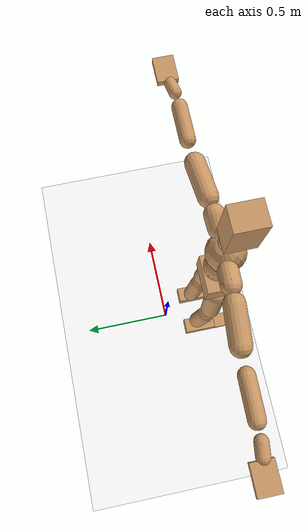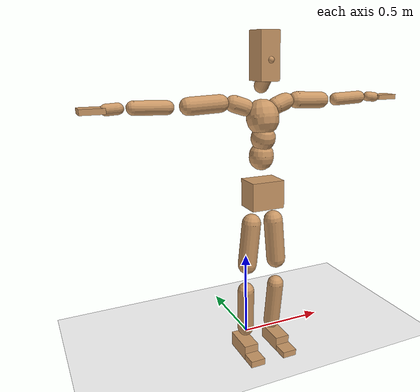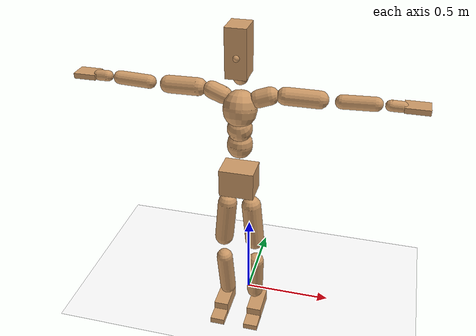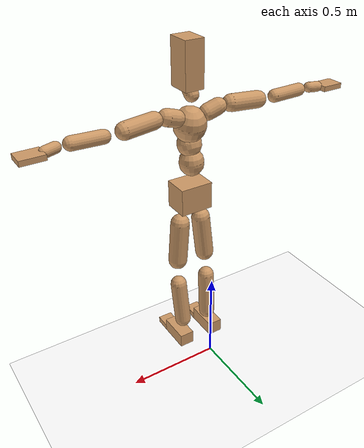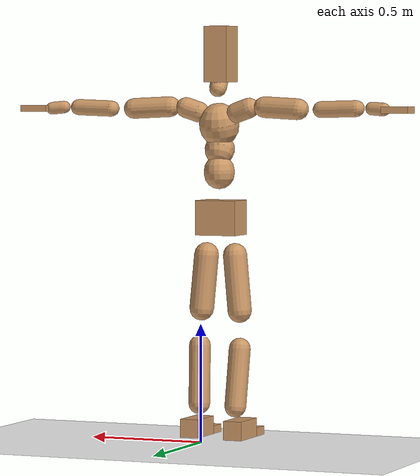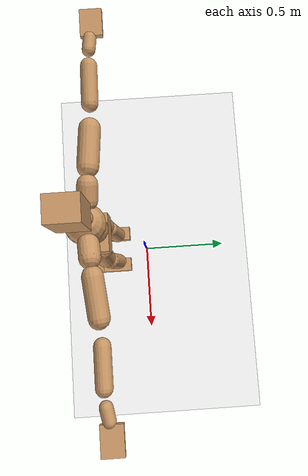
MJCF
<mujoco model="humanoid">
  <option integrator="implicitfast" />

  <visual>
    <global offwidth="1280" offheight="960" />
    <headlight active="1" ambient="0.34 0.34 0.34" diffuse="0.5 0.5 0.5" />
  </visual>

  <default>
    <joint damping="2" stiffness="2" armature="0.01" limited="true" solimplimit="0 .99 .01" />
    <geom condim="1" friction="0.7 0.005 0.0001" solimp=".99 .99 .003" solref="0.015 1" margin="0.001" rgba="0.8 0.6 .4 1" />
    <default class="smplcontact">
      <geom condim="3" friction="1. 0.005 0.0001" solref="0.015 1" solimp="0.98 0.98 0.001" priority="1" />
    </default>
    <default class="stiff_medium">
      <joint stiffness="10" />
    </default>
    <default class="stiff_medium_higher">
      <joint stiffness="50" />
    </default>
    <default class="stiff_high">
      <joint stiffness="100" />
    </default>
  </default>

  <asset>
    <texture type="skybox" builtin="gradient" rgb1="0.99 0.99 0.99" rgb2="0.608 0.828 0.892" width="100" />
    <texture builtin="flat" height="1278" mark="cross" markrgb="1 1 1" name="texgeom" random="0.01" rgb1="0.8 0.6 0.4" rgb2="0.8 0.6 0.4" type="cube" width="127" />
    <texture name="texplane" type="2d" builtin="checker" markrgb="1 1 1" rgb1="0.756 0.772 0.76" rgb2="0.6 0.6 0.6" width="100" height="100" />
    <material name="MatPlane" reflectance="0.5" texture="texplane" texrepeat="1 1" texuniform="true" />
    <material name="geom" texture="texgeom" texuniform="true" />
  </asset>

  <worldbody>
    <light name="tracking_light" pos="0 0 7" dir="0 0 -1" directional="true" cutoff="100" exponent="1" diffuse="1 1 1" specular="0.1 0.1 0.1" mode="trackcom" />
    <camera name="back" pos="0 3 2.4" xyaxes="-1 0 0 0 -1 2" mode="trackcom" />
    <camera name="side" pos="-3 0 2.4" xyaxes="0 -1 0 1 0 2" mode="trackcom" />
    <camera name="front_side" pos="-2.8 -2.8 0.8" xyaxes="0.5 -0.5 0 0.1 0.1 1" mode="trackcom" />
    <geom condim="3" name="floor" pos="0 0 0" rgba="1 1 1 1" size="100 100 .2" type="plane" material="MatPlane" />
    <body name="Pelvis" pos="-0.0018 -0.2233 0.955627" euler="90 0 0">
      <site name="Pelvis" size="0.01" />
      <freejoint name="Pelvis" />
      <geom type="box" pos="0 -0.0124985 -0.004675" size="0.090865 0.0745778 0.07055" quat="1.0000 0.0000 0.0000 0.0000" density="3165.830099" name="Pelvis" />
      <body name="L_Hip" pos="0.059075 -0.0944102 -0.00578">
        <joint name="L_Hip_x" type="hinge" pos="0 0 0" axis="1 0 0" stiffness="10" range="-160.0 22.92" class="stiff_medium" damping="15" />
        <joint name="L_Hip_y" type="hinge" pos="0 0 0" axis="0 1 0" stiffness="10" range="-70.0 70.0" class="stiff_medium" damping="10" />
        <joint name="L_Hip_z" type="hinge" pos="0 0 0" axis="0 0 1" stiffness="10" range="-28.65 90.0" class="stiff_medium" damping="10" />
        <geom type="capsule" density="2040.816327" fromto="0.00711405 -0.0774712 -0.000929509 0.0282892 -0.310088 -0.00371843" size="0.052275" name="L_Hip" />
        <body name="L_Knee" pos="0.0354032 -0.387559 -0.00464794">
          <joint name="L_Knee_x" type="hinge" pos="0 0 0" axis="1 0 0" range="-5.16 171.89" damping="8" />
          <joint name="L_Knee_y" type="hinge" pos="0 0 0" axis="0 1 0" range="-4.58 6.88" damping="8" />
          <joint name="L_Knee_z" type="hinge" pos="0 0 0" axis="0 0 1" range="-6.88 4.58" damping="8" />
          <geom type="capsule" density="1234.567901" fromto="-0.00279497 -0.08222 -0.00899855 -0.011265 -0.328885 -0.0361647" size="0.045985" name="L_Knee" />
          <body name="L_Ankle" pos="-0.01406 -0.411105 -0.0451633">
            <joint name="L_Ankle_x" type="hinge" pos="0 0 0" axis="1 0 0" range="-45.84 45.84" class="stiff_medium" damping="6" />
            <joint name="L_Ankle_y" type="hinge" pos="0 0 0" axis="0 1 0" range="-74.48 22.92" class="stiff_medium" damping="3" />
            <joint name="L_Ankle_z" type="hinge" pos="0 0 0" axis="0 0 1" range="-4.58 4.58" class="stiff_medium" damping="6" />
            <geom type="box" pos="0.019805 -0.020315 0.0251225" size="0.041055 0.03944 0.0882401" quat="1.0000 0.0000 0.0000 0.0000" density="449.071558" name="L_Ankle" class="smplcontact" />
            <body name="L_Toe" pos="0.02244 -0.04743 0.123848">
              <joint name="L_Toe_x" type="hinge" pos="0 0 0" axis="1 0 0" range="-91.67 22.92" />
              <joint name="L_Toe_y" type="hinge" pos="0 0 0" axis="0 1 0" range="-4.58 4.58" />
              <joint name="L_Toe_z" type="hinge" pos="0 0 0" axis="0 0 1" range="-4.58 4.58" />
              <geom type="box" pos="-0.00255 0.004675 0.0257453" size="0.04063 0.017 0.0514907" quat="1.0000 0.0000 0.0000 0.0000" density="423.206892" name="L_Toe" class="smplcontact" />
            </body>
          </body>
        </body>
      </body>
      <body name="R_Hip" pos="-0.057545 -0.0934805 -0.003655">
        <joint name="R_Hip_x" type="hinge" pos="0 0 0" axis="1 0 0" stiffness="10" range="-160.0 22.92" class="stiff_medium" damping="15" />
        <joint name="R_Hip_y" type="hinge" pos="0 0 0" axis="0 1 0" stiffness="10" range="-70.0 70.0" class="stiff_medium" damping="10" />
        <joint name="R_Hip_z" type="hinge" pos="0 0 0" axis="0 0 1" stiffness="10" range="-90.0 28.65" class="stiff_medium" damping="10" />
        <geom type="capsule" density="2040.816327" fromto="-0.00794093 -0.0790208 -0.00185307 -0.0315951 -0.316182 -0.00732762" size="0.05151" name="R_Hip" />
        <body name="R_Knee" pos="-0.039536 -0.395203 -0.0091807">
          <joint name="R_Knee_x" type="hinge" pos="0 0 0" axis="1 0 0" range="-5.16 171.89" damping="8" />
          <joint name="R_Knee_y" type="hinge" pos="0 0 0" axis="0 1 0" range="-6.88 4.58" damping="8" />
          <joint name="R_Knee_z" type="hinge" pos="0 0 0" axis="0 0 1" range="-4.58 6.88" damping="8" />
          <geom type="capsule" density="1234.567901" fromto="0.0032935 -0.0823265 -0.00876856 0.0130031 -0.329198 -0.0349018" size="0.045985" name="R_Knee" />
          <body name="R_Ankle" pos="0.0162966 -0.411524 -0.0436704">
            <joint name="R_Ankle_x" type="hinge" pos="0 0 0" axis="1 0 0" range="-45.84 45.84" class="stiff_medium" damping="6" />
            <joint name="R_Ankle_y" type="hinge" pos="0 0 0" axis="0 1 0" range="-22.92 74.48" class="stiff_medium" damping="3" />
            <joint name="R_Ankle_z" type="hinge" pos="0 0 0" axis="0 0 1" range="-4.58 4.58" class="stiff_medium" damping="6" />
            <geom type="box" pos="-0.01802 -0.01479 0.0265758" size="0.041055 0.04063 0.0897972" quat="1.0000 0.0000 0.0000 0.0000" density="434.700981" name="R_Ankle" class="smplcontact" />
            <body name="R_Toe" pos="-0.02159 -0.040885 0.128">
              <joint name="R_Toe_x" type="hinge" pos="0 0 0" axis="1 0 0" range="-91.67 22.92" />
              <joint name="R_Toe_y" type="hinge" pos="0 0 0" axis="0 1 0" range="-4.58 4.58" />
              <joint name="R_Toe_z" type="hinge" pos="0 0 0" axis="0 0 1" range="-4.58 4.58" />
              <geom type="box" pos="0.00357 0.003825 0.0235653" size="0.040715 0.01836 0.0511792" quat="1.0000 0.0000 0.0000 0.0000" density="407.384095" name="R_Toe" class="smplcontact" />
            </body>
          </body>
        </body>
      </body>
      <body name="Torso" pos="-0.002125 0.11259 -0.022695">
        <joint name="Torso_x" type="hinge" pos="0 0 0" axis="1 0 0" range="-25.78 57.3" class="stiff_medium" damping="15" />
        <joint name="Torso_y" type="hinge" pos="0 0 0" axis="0 1 0" range="-57.3 57.3" class="stiff_high" damping="20" />
        <joint name="Torso_z" type="hinge" pos="0 0 0" axis="0 0 1" range="-34.38 34.38" class="stiff_high" damping="20" />
        <geom type="capsule" density="2040.816327" fromto="0.002537 0.0628041 0.000507401 0.00305347 0.0767487 0.000610694" size="0.065365" name="Torso" />
        <body name="Spine" pos="0.00559115 0.139656 0.00111823">
          <joint name="Spine_x" type="hinge" pos="0 0 0" axis="1 0 0" stiffness="10" range="-25.78 57.3" class="stiff_medium" damping="15" />
          <joint name="Spine_y" type="hinge" pos="0 0 0" axis="0 1 0" stiffness="10" range="-57.3 57.3" class="stiff_high" damping="8" />
          <joint name="Spine_z" type="hinge" pos="0 0 0" axis="0 0 1" stiffness="20" range="-34.38 34.38" class="stiff_high" damping="12" />
          <geom type="capsule" density="2040.816327" fromto="0.000676785 0.0245646 0.0118164 0.000780078 0.0300392 0.014502" size="0.064175" name="Spine" />
          <body name="Chest" pos="0.00145686 0.0546038 0.0263184">
            <joint name="Chest_x" type="hinge" pos="0 0 0" axis="1 0 0" stiffness="10" range="-25.78 57.3" class="stiff_medium" damping="15" />
            <joint name="Chest_y" type="hinge" pos="0 0 0" axis="0 1 0" stiffness="10" range="-57.3 57.3" class="stiff_high" damping="8" />
            <joint name="Chest_z" type="hinge" pos="0 0 0" axis="0 0 1" stiffness="20" range="-34.38 34.38" class="stiff_high" damping="12" />
            <geom type="capsule" density="2040.816327" fromto="-0.000847534 0.0704327 -0.0179238 -0.000950828 0.08603 -0.0219523" size="0.08517" name="Chest" />
            <body name="Neck" pos="-0.00263553 0.220399 -0.0464305">
              <joint name="Neck_x" type="hinge" pos="0 0 0" axis="1 0 0" range="-28.65 57.3" class="stiff_medium_higher" damping="10" />
              <joint name="Neck_y" type="hinge" pos="0 0 0" axis="0 1 0" range="-40.11 40.11" class="stiff_medium_higher" damping="10" />
              <joint name="Neck_z" type="hinge" pos="0 0 0" axis="0 0 1" range="-40.11 40.11" class="stiff_medium_higher" damping="10" />
              <geom type="capsule" density="1000" fromto="0.00104446 0.0134982 0.0106886 0.00426263 0.0539848 0.0426626" size="0.0372431" name="Neck" />
              <body name="Head" pos="0.00539187 0.067475 0.0532595">
                <joint name="Head_x" type="hinge" pos="0 0 0" axis="1 0 0" range="-28.65 57.3" class="stiff_medium_higher" damping="2" />
                <joint name="Head_y" type="hinge" pos="0 0 0" axis="0 1 0" range="-40.11 40.11" class="stiff_medium_higher" damping="2" />
                <joint name="Head_z" type="hinge" pos="0 0 0" axis="0 0 1" range="-40.11 40.11" class="stiff_medium_higher" damping="2" />
                <geom type="box" pos="-0.00358764 0.0909392 -0.00990872" size="0.0517645 0.119799 0.0649192" quat="1.0000 0.0000 0.0000 0.0000" density="1018.069894" name="Head" />
                <geom type="capsule" name="nose" size="0.017084 0.008542" pos="0 0.0726683 0.04271" quat="1 0 0 0" mass="0" contype="0" conaffinity="0" />
              </body>
            </body>
            <body name="L_Thorax" pos="0.0668324 0.125736 -0.0347422">
              <joint name="L_Thorax_x" type="hinge" pos="0 0 0" axis="1 0 0" range="-10.89 4.58" class="stiff_medium_higher" damping="20" />
              <joint name="L_Thorax_y" type="hinge" pos="0 0 0" axis="0 1 0" range="-28.65 17.19" class="stiff_medium_higher" damping="20" />
              <joint name="L_Thorax_z" type="hinge" pos="0 0 0" axis="0 0 1" range="-31.51 40.11" class="stiff_medium_higher" damping="20" />
              <geom type="capsule" density="1000" fromto="0.0187999 0.00630107 -0.00185323 0.0751981 0.0252038 -0.00732778" size="0.044285" name="L_Thorax" />
              <body name="L_Shoulder" pos="0.093998 0.0315048 -0.00918102">
                <joint name="L_Shoulder_x" type="hinge" pos="0 0 0" axis="1 0 0" range="-97.4 97.4" class="stiff_medium" damping="6" />
                <joint name="L_Shoulder_y" type="hinge" pos="0 0 0" axis="0 1 0" range="-108.86 80.21" class="stiff_medium" damping="6" />
                <joint name="L_Shoulder_z" type="hinge" pos="0 0 0" axis="0 0 1" range="-97.4 85.94" class="stiff_medium" damping="6" />
                <geom type="capsule" density="1000" fromto="0.0536099 -0.00267317 -0.00568056 0.214541 -0.0105235 -0.022724" size="0.043945" name="L_Shoulder" />
                <body name="L_Elbow" pos="0.268151 -0.0131966 -0.0284045">
                  <joint name="L_Elbow_x" type="hinge" pos="0 0 0" axis="1 0 0" range="-17.19 4.58" damping="5" />
                  <joint name="L_Elbow_y" type="hinge" pos="0 0 0" axis="0 1 0" range="-180.0 17.19" damping="5" />
                  <joint name="L_Elbow_z" type="hinge" pos="0 0 0" axis="0 0 1" range="-100.84 4.58" damping="5" />
                  <geom type="capsule" density="1000" fromto="0.0514401 0.00185884 -0.000212627 0.205967 0.00743668 -0.000935681" size="0.034425" name="L_Elbow" />
                  <body name="L_Wrist" pos="0.257407 0.00929553 -0.00123331">
                    <joint name="L_Wrist_x" type="hinge" pos="0 0 0" axis="1 0 0" range="-180.0 22.92" />
                    <joint name="L_Wrist_y" type="hinge" pos="0 0 0" axis="0 1 0" range="-17.19 17.19" />
                    <joint name="L_Wrist_z" type="hinge" pos="0 0 0" axis="0 0 1" range="-22.92 22.92" />
                    <geom type="capsule" density="1000" fromto="0.0173527 -0.00165874 -0.0030987 0.0694126 -0.00672011 -0.0123951" size="0.02703" name="L_Wrist" class="smplcontact" />
                    <body name="L_Hand" pos="0.0867639 -0.00846371 -0.0154085">
                      <joint name="L_Hand_x" type="hinge" pos="0 0 0" axis="1 0 0" range="-17.19 17.19" />
                      <joint name="L_Hand_y" type="hinge" pos="0 0 0" axis="0 1 0" range="-51.57 51.57" />
                      <joint name="L_Hand_z" type="hinge" pos="0 0 0" axis="0 0 1" range="-91.67 91.67" />
                      <geom type="box" pos="0.0509236 0.00085 -0.00493" size="0.0604266 0.01343 0.04573" quat="1.0000 0.0000 0.0000 0.0000" density="400.552564" name="L_Hand" class="smplcontact" />
                    </body>
                  </body>
                </body>
              </body>
            </body>
            <body name="R_Thorax" pos="-0.0696769 0.123155 -0.0385374">
              <joint name="R_Thorax_x" type="hinge" pos="0 0 0" axis="1 0 0" range="-10.89 4.58" class="stiff_medium_higher" damping="20" />
              <joint name="R_Thorax_y" type="hinge" pos="0 0 0" axis="0 1 0" range="-17.19 28.65" class="stiff_medium_higher" damping="20" />
              <joint name="R_Thorax_z" type="hinge" pos="0 0 0" axis="0 0 1" range="-40.11 31.51" class="stiff_medium_higher" damping="20" />
              <geom type="capsule" density="1000" fromto="-0.0198318 0.00671389 -0.00186533 -0.0793288 0.0268561 -0.00754647" size="0.043435" name="R_Thorax" />
              <body name="R_Shoulder" pos="-0.0991661 0.0336569 -0.00941232">
                <joint name="R_Shoulder_x" type="hinge" pos="0 0 0" axis="1 0 0" range="-97.4 97.4" class="stiff_medium" damping="6" />
                <joint name="R_Shoulder_y" type="hinge" pos="0 0 0" axis="0 1 0" range="-80.21 108.86" class="stiff_medium" damping="6" />
                <joint name="R_Shoulder_z" type="hinge" pos="0 0 0" axis="0 0 1" range="-85.94 97.4" class="stiff_medium" damping="6" />
                <geom type="capsule" density="1000" fromto="-0.0523707 -0.00278223 -0.00443457 -0.209687 -0.0110457 -0.0176561" size="0.045135" name="R_Shoulder" />
                <body name="R_Elbow" pos="-0.262056 -0.0137429 -0.0220906">
                  <joint name="R_Elbow_x" type="hinge" pos="0 0 0" axis="1 0 0" range="-17.19 4.58" damping="5" />
                  <joint name="R_Elbow_y" type="hinge" pos="0 0 0" axis="0 1 0" range="-17.19 180.0" damping="5" />
                  <joint name="R_Elbow_z" type="hinge" pos="0 0 0" axis="0 0 1" range="-4.58 100.84" damping="5" />
                  <geom type="capsule" density="1000" fromto="-0.0527833 0.00164088 -0.0011365 -0.210925 0.00639237 -0.00454518" size="0.03468" name="R_Elbow" />
                  <body name="R_Wrist" pos="-0.263709 0.00803326 -0.00576669">
                    <joint name="R_Wrist_x" type="hinge" pos="0 0 0" axis="1 0 0" range="-180.0 22.92" />
                    <joint name="R_Wrist_y" type="hinge" pos="0 0 0" axis="0 1 0" range="-17.19 17.19" />
                    <joint name="R_Wrist_z" type="hinge" pos="0 0 0" axis="0 0 1" range="-22.92 22.92" />
                    <geom type="capsule" density="1000" fromto="-0.017457 -0.0012452 -0.00216237 -0.06993 -0.00506706 -0.00856656" size="0.02771" name="R_Wrist" class="smplcontact" />
                    <body name="R_Hand" pos="-0.0873848 -0.0063121 -0.0106437">
                      <joint name="R_Hand_x" type="hinge" pos="0 0 0" axis="1 0 0" range="-17.19 17.19" />
                      <joint name="R_Hand_y" type="hinge" pos="0 0 0" axis="0 1 0" range="-51.57 51.57" />
                      <joint name="R_Hand_z" type="hinge" pos="0 0 0" axis="0 0 1" range="-91.67 91.67" />
                      <geom type="box" pos="-0.0477215 -0.000765 -0.006715" size="0.0587739 0.01394 0.04641" quat="1.0000 0.0000 0.0000 0.0000" density="403.679611" name="R_Hand" class="smplcontact" />
                    </body>
                  </body>
                </body>
              </body>
            </body>
          </body>
        </body>
      </body>
    </body>
  </worldbody>
  <actuator>
    <general name="L_Hip_x" joint="L_Hip_x" biastype="affine" gainprm="287.33006409732246" biasprm="-215.3247604770444 -180 -2.0" ctrllimited="true" ctrlrange="-1 1" forcerange="-360 360" />
    <general name="L_Hip_y" joint="L_Hip_y" biastype="affine" gainprm="219.9114857512855" biasprm="0.0 -180 -2.0" ctrllimited="true" ctrlrange="-1 1" forcerange="-360 360" />
    <general name="L_Hip_z" joint="L_Hip_z" biastype="affine" gainprm="186.3749841742145" biasprm="96.3683546488669 -180 -2.0" ctrllimited="true" ctrlrange="-1 1" forcerange="-360 360" />
    <general name="L_Knee_x" joint="L_Knee_x" biastype="affine" gainprm="278.10948965903646" biasprm="261.8988715665131 -180 -2.0" ctrllimited="true" ctrlrange="-1 1" forcerange="-360 360" />
    <general name="L_Knee_y" joint="L_Knee_y" biastype="affine" gainprm="18.001325905069514" biasprm="3.612831551628262 -180 -2.0" ctrllimited="true" ctrlrange="-1 1" forcerange="-360 360" />
    <general name="L_Knee_z" joint="L_Knee_z" biastype="affine" gainprm="18.001325905069514" biasprm="-3.612831551628262 -180 -2.0" ctrllimited="true" ctrlrange="-1 1" forcerange="-360 360" />
    <general name="L_Ankle_x" joint="L_Ankle_x" biastype="affine" gainprm="72.00530362027807" biasprm="0.0 -90 -2.0" ctrllimited="true" ctrlrange="-1 1" forcerange="-180 180" />
    <general name="L_Ankle_y" joint="L_Ankle_y" biastype="affine" gainprm="76.49778111491148" biasprm="-40.49512930477244 -90 -2.0" ctrllimited="true" ctrlrange="-1 1" forcerange="-180 180" />
    <general name="L_Ankle_z" joint="L_Ankle_z" biastype="affine" gainprm="7.1942471767206255" biasprm="0.0 -90 -2.0" ctrllimited="true" ctrlrange="-1 1" forcerange="-180 180" />
    <general name="L_Toe_x" joint="L_Toe_x" biastype="affine" gainprm="71.99902043497087" biasprm="-43.19689898685965 -72 -0.8" ctrllimited="true" ctrlrange="-1 1" forcerange="-144 144" />
    <general name="L_Toe_y" joint="L_Toe_y" biastype="affine" gainprm="5.755397741376501" biasprm="0.0 -72 -0.8" ctrllimited="true" ctrlrange="-1 1" forcerange="-144 144" />
    <general name="L_Toe_z" joint="L_Toe_z" biastype="affine" gainprm="5.755397741376501" biasprm="0.0 -72 -0.8" ctrllimited="true" ctrlrange="-1 1" forcerange="-144 144" />
    <general name="R_Hip_x" joint="R_Hip_x" biastype="affine" gainprm="287.33006409732246" biasprm="-215.3247604770444 -180 -2.0" ctrllimited="true" ctrlrange="-1 1" forcerange="-360 360" />
    <general name="R_Hip_y" joint="R_Hip_y" biastype="affine" gainprm="219.9114857512855" biasprm="0.0 -180 -2.0" ctrllimited="true" ctrlrange="-1 1" forcerange="-360 360" />
    <general name="R_Hip_z" joint="R_Hip_z" biastype="affine" gainprm="186.3749841742145" biasprm="-96.3683546488669 -180 -2.0" ctrllimited="true" ctrlrange="-1 1" forcerange="-360 360" />
    <general name="R_Knee_x" joint="R_Knee_x" biastype="affine" gainprm="278.10948965903646" biasprm="261.8988715665131 -180 -2.0" ctrllimited="true" ctrlrange="-1 1" forcerange="-360 360" />
    <general name="R_Knee_y" joint="R_Knee_y" biastype="affine" gainprm="18.001325905069514" biasprm="-3.612831551628262 -180 -2.0" ctrllimited="true" ctrlrange="-1 1" forcerange="-360 360" />
    <general name="R_Knee_z" joint="R_Knee_z" biastype="affine" gainprm="18.001325905069514" biasprm="3.612831551628262 -180 -2.0" ctrllimited="true" ctrlrange="-1 1" forcerange="-360 360" />
    <general name="R_Ankle_x" joint="R_Ankle_x" biastype="affine" gainprm="72.00530362027807" biasprm="0.0 -90 -2.0" ctrllimited="true" ctrlrange="-1 1" forcerange="-180 180" />
    <general name="R_Ankle_y" joint="R_Ankle_y" biastype="affine" gainprm="76.49778111491148" biasprm="40.49512930477244 -90 -2.0" ctrllimited="true" ctrlrange="-1 1" forcerange="-180 180" />
    <general name="R_Ankle_z" joint="R_Ankle_z" biastype="affine" gainprm="7.1942471767206255" biasprm="0.0 -90 -2.0" ctrllimited="true" ctrlrange="-1 1" forcerange="-180 180" />
    <general name="R_Toe_x" joint="R_Toe_x" biastype="affine" gainprm="71.99902043497087" biasprm="-43.19689898685965 -72 -0.8" ctrllimited="true" ctrlrange="-1 1" forcerange="-144 144" />
    <general name="R_Toe_y" joint="R_Toe_y" biastype="affine" gainprm="5.755397741376501" biasprm="0.0 -72 -0.8" ctrllimited="true" ctrlrange="-1 1" forcerange="-144 144" />
    <general name="R_Toe_z" joint="R_Toe_z" biastype="affine" gainprm="5.755397741376501" biasprm="0.0 -72 -0.8" ctrllimited="true" ctrlrange="-1 1" forcerange="-144 144" />
    <general name="Torso_x" joint="Torso_x" biastype="affine" gainprm="174.00234510682668" biasprm="66.0153336274335 -240 -4.0" ctrllimited="true" ctrlrange="-1 1" forcerange="-360 360" />
    <general name="Torso_y" joint="Torso_y" biastype="affine" gainprm="240.0176787342602" biasprm="0.0 -240 -4.0" ctrllimited="true" ctrlrange="-1 1" forcerange="-360 360" />
    <general name="Torso_z" joint="Torso_z" biastype="affine" gainprm="144.01060724055614" biasprm="0.0 -240 -4.0" ctrllimited="true" ctrlrange="-1 1" forcerange="-360 360" />
    <general name="Spine_x" joint="Spine_x" biastype="affine" gainprm="174.00234510682668" biasprm="66.0153336274335 -240 -4.0" ctrllimited="true" ctrlrange="-1 1" forcerange="-360 360" />
    <general name="Spine_y" joint="Spine_y" biastype="affine" gainprm="240.0176787342602" biasprm="0.0 -240 -4.0" ctrllimited="true" ctrlrange="-1 1" forcerange="-360 360" />
    <general name="Spine_z" joint="Spine_z" biastype="affine" gainprm="144.01060724055614" biasprm="0.0 -240 -4.0" ctrllimited="true" ctrlrange="-1 1" forcerange="-360 360" />
    <general name="Chest_x" joint="Chest_x" biastype="affine" gainprm="174.00234510682668" biasprm="66.0153336274335 -240 -4.0" ctrllimited="true" ctrlrange="-1 1" forcerange="-360 360" />
    <general name="Chest_y" joint="Chest_y" biastype="affine" gainprm="240.0176787342602" biasprm="0.0 -240 -4.0" ctrllimited="true" ctrlrange="-1 1" forcerange="-360 360" />
    <general name="Chest_z" joint="Chest_z" biastype="affine" gainprm="144.01060724055614" biasprm="0.0 -240 -4.0" ctrllimited="true" ctrlrange="-1 1" forcerange="-360 360" />
    <general name="Neck_x" joint="Neck_x" biastype="affine" gainprm="27.00198885760427" biasprm="9.000662952534757 -36 -0.8" ctrllimited="true" ctrlrange="-1 1" forcerange="-72 72" />
    <general name="Neck_y" joint="Neck_y" biastype="affine" gainprm="25.20185626709732" biasprm="0.0 -36 -0.8" ctrllimited="true" ctrlrange="-1 1" forcerange="-72 72" />
    <general name="Neck_z" joint="Neck_z" biastype="affine" gainprm="25.20185626709732" biasprm="0.0 -36 -0.8" ctrllimited="true" ctrlrange="-1 1" forcerange="-72 72" />
    <general name="Head_x" joint="Head_x" biastype="affine" gainprm="18.001325905069514" biasprm="6.000441968356505 -24 -0.8" ctrllimited="true" ctrlrange="-1 1" forcerange="-48 48" />
    <general name="Head_y" joint="Head_y" biastype="affine" gainprm="16.801237511398213" biasprm="0.0 -24 -0.8" ctrllimited="true" ctrlrange="-1 1" forcerange="-48 48" />
    <general name="Head_z" joint="Head_z" biastype="affine" gainprm="16.801237511398213" biasprm="0.0 -24 -0.8" ctrllimited="true" ctrlrange="-1 1" forcerange="-48 48" />
    <general name="L_Thorax_x" joint="L_Thorax_x" biastype="affine" gainprm="16.200146117011364" biasprm="-6.6078165480505335 -120 -1.6" ctrllimited="true" ctrlrange="-1 1" forcerange="-240 240" />
    <general name="L_Thorax_y" joint="L_Thorax_y" biastype="affine" gainprm="48.00353574685204" biasprm="-12.00088393671301 -120 -1.6" ctrllimited="true" ctrlrange="-1 1" forcerange="-240 240" />
    <general name="L_Thorax_z" joint="L_Thorax_z" biastype="affine" gainprm="75.00028861670033" biasprm="9.00589894029074 -120 -1.6" ctrllimited="true" ctrlrange="-1 1" forcerange="-240 240" />
    <general name="L_Shoulder_x" joint="L_Shoulder_x" biastype="affine" gainprm="81.5976331892389" biasprm="0.0 -48 -1.6" ctrllimited="true" ctrlrange="-1 1" forcerange="-96 96" />
    <general name="L_Shoulder_y" joint="L_Shoulder_y" biastype="affine" gainprm="79.19745640189629" biasprm="-12.00088393671301 -48 -1.6" ctrllimited="true" ctrlrange="-1 1" forcerange="-96 96" />
    <general name="L_Shoulder_z" joint="L_Shoulder_z" biastype="affine" gainprm="76.79727961455369" biasprm="-4.800353574685214 -48 -1.6" ctrllimited="true" ctrlrange="-1 1" forcerange="-96 96" />
    <general name="L_Elbow_x" joint="L_Elbow_x" biastype="affine" gainprm="13.67849441372996" biasprm="-7.923096672353461 -72 -0.8" ctrllimited="true" ctrlrange="-1 1" forcerange="-144 144" />
    <general name="L_Elbow_y" joint="L_Elbow_y" biastype="affine" gainprm="123.89813107227425" biasprm="-102.29653998619085 -72 -0.8" ctrllimited="true" ctrlrange="-1 1" forcerange="-144 144" />
    <general name="L_Elbow_z" joint="L_Elbow_z" biastype="affine" gainprm="66.23733950828719" biasprm="-60.4819417669107 -72 -0.8" ctrllimited="true" ctrlrange="-1 1" forcerange="-144 144" />
    <general name="L_Wrist_x" joint="L_Wrist_x" biastype="affine" gainprm="21.24973270888136" biasprm="-16.449379134196157 -12 -0.8" ctrllimited="true" ctrlrange="-1 1" forcerange="-24 24" />
    <general name="L_Wrist_y" joint="L_Wrist_y" biastype="affine" gainprm="3.6002651810139037" biasprm="0.0 -12 -0.8" ctrllimited="true" ctrlrange="-1 1" forcerange="-24 24" />
    <general name="L_Wrist_z" joint="L_Wrist_z" biastype="affine" gainprm="4.800353574685205" biasprm="0.0 -12 -0.8" ctrllimited="true" ctrlrange="-1 1" forcerange="-24 24" />
    <general name="L_Hand_x" joint="L_Hand_x" biastype="affine" gainprm="3.6002651810139037" biasprm="0.0 -12 -0.8" ctrllimited="true" ctrlrange="-1 1" forcerange="-24 24" />
    <general name="L_Hand_y" joint="L_Hand_y" biastype="affine" gainprm="10.800795543041708" biasprm="0.0 -12 -0.8" ctrllimited="true" ctrlrange="-1 1" forcerange="-24 24" />
    <general name="L_Hand_z" joint="L_Hand_z" biastype="affine" gainprm="19.199319903638422" biasprm="0.0 -12 -0.8" ctrllimited="true" ctrlrange="-1 1" forcerange="-24 24" />
    <general name="R_Thorax_x" joint="R_Thorax_x" biastype="affine" gainprm="16.200146117011364" biasprm="-6.6078165480505335 -120 -1.6" ctrllimited="true" ctrlrange="-1 1" forcerange="-240 240" />
    <general name="R_Thorax_y" joint="R_Thorax_y" biastype="affine" gainprm="48.00353574685204" biasprm="12.000883936713002 -120 -1.6" ctrllimited="true" ctrlrange="-1 1" forcerange="-240 240" />
    <general name="R_Thorax_z" joint="R_Thorax_z" biastype="affine" gainprm="75.00028861670033" biasprm="-9.00589894029074 -120 -1.6" ctrllimited="true" ctrlrange="-1 1" forcerange="-240 240" />
    <general name="R_Shoulder_x" joint="R_Shoulder_x" biastype="affine" gainprm="81.5976331892389" biasprm="0.0 -48 -1.6" ctrllimited="true" ctrlrange="-1 1" forcerange="-96 96" />
    <general name="R_Shoulder_y" joint="R_Shoulder_y" biastype="affine" gainprm="79.19745640189629" biasprm="12.00088393671301 -48 -1.6" ctrllimited="true" ctrlrange="-1 1" forcerange="-96 96" />
    <general name="R_Shoulder_z" joint="R_Shoulder_z" biastype="affine" gainprm="76.79727961455369" biasprm="4.800353574685204 -48 -1.6" ctrllimited="true" ctrlrange="-1 1" forcerange="-96 96" />
    <general name="R_Elbow_x" joint="R_Elbow_x" biastype="affine" gainprm="13.67849441372996" biasprm="-7.923096672353461 -72 -0.8" ctrllimited="true" ctrlrange="-1 1" forcerange="-144 144" />
    <general name="R_Elbow_y" joint="R_Elbow_y" biastype="affine" gainprm="123.89813107227425" biasprm="102.29653998619085 -72 -0.8" ctrllimited="true" ctrlrange="-1 1" forcerange="-144 144" />
    <general name="R_Elbow_z" joint="R_Elbow_z" biastype="affine" gainprm="66.23733950828719" biasprm="60.481941766910694 -72 -0.8" ctrllimited="true" ctrlrange="-1 1" forcerange="-144 144" />
    <general name="R_Wrist_x" joint="R_Wrist_x" biastype="affine" gainprm="21.24973270888136" biasprm="-16.449379134196157 -12 -0.8" ctrllimited="true" ctrlrange="-1 1" forcerange="-24 24" />
    <general name="R_Wrist_y" joint="R_Wrist_y" biastype="affine" gainprm="3.6002651810139037" biasprm="0.0 -12 -0.8" ctrllimited="true" ctrlrange="-1 1" forcerange="-24 24" />
    <general name="R_Wrist_z" joint="R_Wrist_z" biastype="affine" gainprm="4.800353574685205" biasprm="0.0 -12 -0.8" ctrllimited="true" ctrlrange="-1 1" forcerange="-24 24" />
    <general name="R_Hand_x" joint="R_Hand_x" biastype="affine" gainprm="3.6002651810139037" biasprm="0.0 -12 -0.8" ctrllimited="true" ctrlrange="-1 1" forcerange="-24 24" />
    <general name="R_Hand_y" joint="R_Hand_y" biastype="affine" gainprm="10.800795543041708" biasprm="0.0 -12 -0.8" ctrllimited="true" ctrlrange="-1 1" forcerange="-24 24" />
    <general name="R_Hand_z" joint="R_Hand_z" biastype="affine" gainprm="19.199319903638422" biasprm="0.0 -12 -0.8" ctrllimited="true" ctrlrange="-1 1" forcerange="-24 24" />
  </actuator>
  <contact>
    <exclude body1="Torso" body2="Chest" />
    <exclude body1="Head" body2="Chest" />
    <exclude body1="R_Knee" body2="R_Toe" />
    <exclude body1="R_Knee" body2="L_Ankle" />
    <exclude body1="R_Knee" body2="L_Toe" />
    <exclude body1="L_Knee" body2="L_Toe" />
    <exclude body1="L_Knee" body2="R_Ankle" />
    <exclude body1="L_Knee" body2="R_Toe" />
    <exclude body1="L_Shoulder" body2="Chest" />
    <exclude body1="R_Shoulder" body2="Chest" />
  </contact>
  <sensor>
    <framelinvel name="sensor_Pelvis_framelinvel" objtype="xbody" objname="Pelvis" />
    <framelinvel name="sensor_L_Hip_framelinvel" objtype="xbody" objname="L_Hip" />
    <framelinvel name="sensor_L_Knee_framelinvel" objtype="xbody" objname="L_Knee" />
    <framelinvel name="sensor_L_Ankle_framelinvel" objtype="xbody" objname="L_Ankle" />
    <framelinvel name="sensor_L_Toe_framelinvel" objtype="xbody" objname="L_Toe" />
    <framelinvel name="sensor_R_Hip_framelinvel" objtype="xbody" objname="R_Hip" />
    <framelinvel name="sensor_R_Knee_framelinvel" objtype="xbody" objname="R_Knee" />
    <framelinvel name="sensor_R_Ankle_framelinvel" objtype="xbody" objname="R_Ankle" />
    <framelinvel name="sensor_R_Toe_framelinvel" objtype="xbody" objname="R_Toe" />
    <framelinvel name="sensor_Torso_framelinvel" objtype="xbody" objname="Torso" />
    <framelinvel name="sensor_Spine_framelinvel" objtype="xbody" objname="Spine" />
    <framelinvel name="sensor_Chest_framelinvel" objtype="xbody" objname="Chest" />
    <framelinvel name="sensor_Neck_framelinvel" objtype="xbody" objname="Neck" />
    <framelinvel name="sensor_Head_framelinvel" objtype="xbody" objname="Head" />
    <framelinvel name="sensor_L_Thorax_framelinvel" objtype="xbody" objname="L_Thorax" />
    <framelinvel name="sensor_L_Shoulder_framelinvel" objtype="xbody" objname="L_Shoulder" />
    <framelinvel name="sensor_L_Elbow_framelinvel" objtype="xbody" objname="L_Elbow" />
    <framelinvel name="sensor_L_Wrist_framelinvel" objtype="xbody" objname="L_Wrist" />
    <framelinvel name="sensor_L_Hand_framelinvel" objtype="xbody" objname="L_Hand" />
    <framelinvel name="sensor_R_Thorax_framelinvel" objtype="xbody" objname="R_Thorax" />
    <framelinvel name="sensor_R_Shoulder_framelinvel" objtype="xbody" objname="R_Shoulder" />
    <framelinvel name="sensor_R_Elbow_framelinvel" objtype="xbody" objname="R_Elbow" />
    <framelinvel name="sensor_R_Wrist_framelinvel" objtype="xbody" objname="R_Wrist" />
    <framelinvel name="sensor_R_Hand_framelinvel" objtype="xbody" objname="R_Hand" />
    <frameangvel name="sensor_Pelvis_frameangvel" objtype="xbody" objname="Pelvis" />
    <frameangvel name="sensor_L_Hip_frameangvel" objtype="xbody" objname="L_Hip" />
    <frameangvel name="sensor_L_Knee_frameangvel" objtype="xbody" objname="L_Knee" />
    <frameangvel name="sensor_L_Ankle_frameangvel" objtype="xbody" objname="L_Ankle" />
    <frameangvel name="sensor_L_Toe_frameangvel" objtype="xbody" objname="L_Toe" />
    <frameangvel name="sensor_R_Hip_frameangvel" objtype="xbody" objname="R_Hip" />
    <frameangvel name="sensor_R_Knee_frameangvel" objtype="xbody" objname="R_Knee" />
    <frameangvel name="sensor_R_Ankle_frameangvel" objtype="xbody" objname="R_Ankle" />
    <frameangvel name="sensor_R_Toe_frameangvel" objtype="xbody" objname="R_Toe" />
    <frameangvel name="sensor_Torso_frameangvel" objtype="xbody" objname="Torso" />
    <frameangvel name="sensor_Spine_frameangvel" objtype="xbody" objname="Spine" />
    <frameangvel name="sensor_Chest_frameangvel" objtype="xbody" objname="Chest" />
    <frameangvel name="sensor_Neck_frameangvel" objtype="xbody" objname="Neck" />
    <frameangvel name="sensor_Head_frameangvel" objtype="xbody" objname="Head" />
    <frameangvel name="sensor_L_Thorax_frameangvel" objtype="xbody" objname="L_Thorax" />
    <frameangvel name="sensor_L_Shoulder_frameangvel" objtype="xbody" objname="L_Shoulder" />
    <frameangvel name="sensor_L_Elbow_frameangvel" objtype="xbody" objname="L_Elbow" />
    <frameangvel name="sensor_L_Wrist_frameangvel" objtype="xbody" objname="L_Wrist" />
    <frameangvel name="sensor_L_Hand_frameangvel" objtype="xbody" objname="L_Hand" />
    <frameangvel name="sensor_R_Thorax_frameangvel" objtype="xbody" objname="R_Thorax" />
    <frameangvel name="sensor_R_Shoulder_frameangvel" objtype="xbody" objname="R_Shoulder" />
    <frameangvel name="sensor_R_Elbow_frameangvel" objtype="xbody" objname="R_Elbow" />
    <frameangvel name="sensor_R_Wrist_frameangvel" objtype="xbody" objname="R_Wrist" />
    <frameangvel name="sensor_R_Hand_frameangvel" objtype="xbody" objname="R_Hand" />
    <subtreelinvel name="Chest_subtreelinvel" body="Chest" />
    <gyro name="Pelvis_gyro" site="Pelvis" />
  </sensor>
</mujoco>
